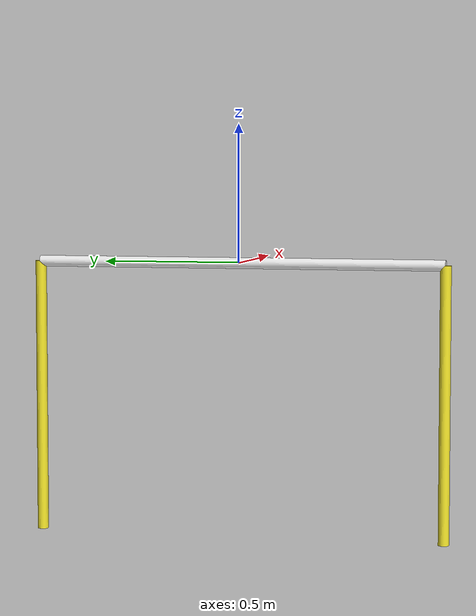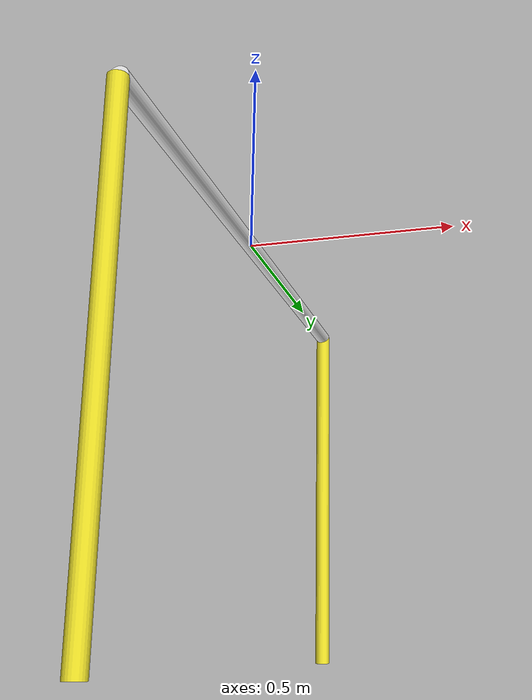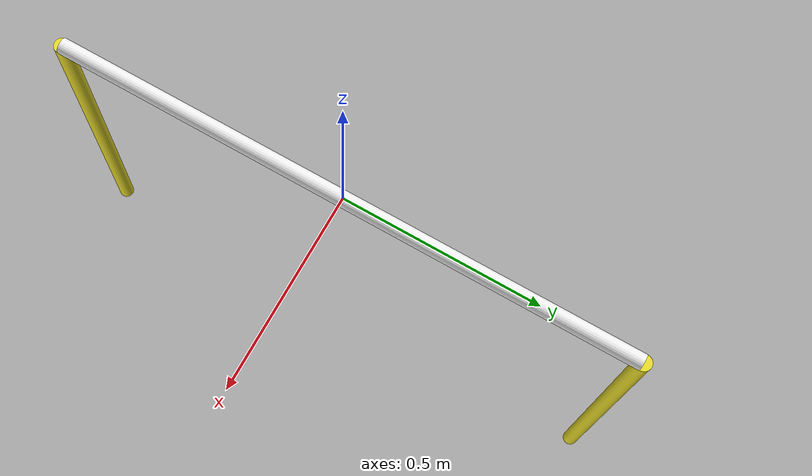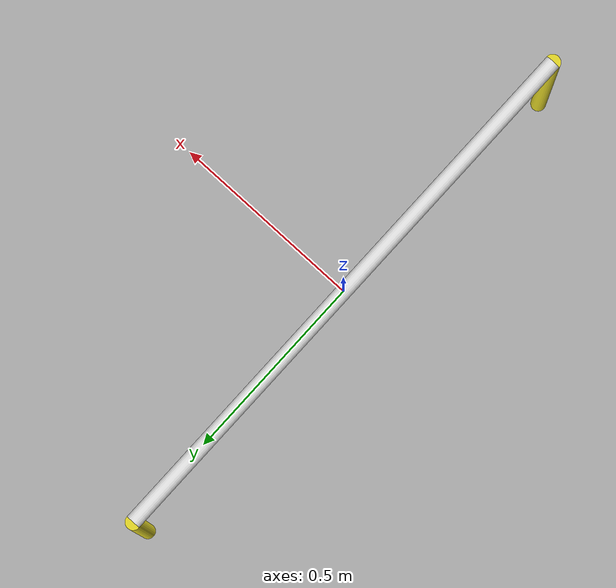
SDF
<?xml version="1.0" ?>

<sdf version="1.5">
  <model name="qualification_gate">
    <static>true</static>
    <link name="link">

      <collision name="left">
        <pose>0 0.75 -0.5 0 0 0</pose>
        <geometry>
          <cylinder>
            <radius>0.02</radius>
            <length>1</length>
          </cylinder>
        </geometry>
      </collision>

      <collision name="right">
        <pose>0 -0.75 -0.5 0 0 0</pose>
        <geometry>
          <cylinder>
            <radius>0.02</radius>
            <length>1</length>
          </cylinder>
        </geometry>
      </collision>

      <collision name="top">
        <pose>0 0 0 1.57 0 0</pose>
        <geometry>
          <cylinder>
            <radius>0.02</radius>
            <length>1.5</length>
          </cylinder>
        </geometry>
      </collision>

      <visual name="left">
        <cast_shadows>false</cast_shadows>
        <pose>0 0.75 -0.5 0 0 0</pose>
        <geometry>
          <cylinder>
            <radius>0.02</radius>
            <length>1</length>
          </cylinder>
        </geometry>
        <material>
          <script>
            <uri>file://media/materials/scripts/colors.material</uri>
            <name>SAUVC/Yellow</name>
          </script>
        </material>
      </visual>

      <visual name="right">
        <cast_shadows>false</cast_shadows>
        <pose>0 -0.75 -0.5 0 0 0</pose>
        <geometry>
          <cylinder>
            <radius>0.02</radius>
            <length>1</length>
          </cylinder>
        </geometry>
        <material>
          <script>
            <uri>file://media/materials/scripts/colors.material</uri>
            <name>SAUVC/Yellow</name>
          </script>
        </material>
      </visual>

      <visual name="top">
        <cast_shadows>false</cast_shadows>
        <pose>0 0 0 1.57 0 0</pose>
        <geometry>
          <cylinder>
            <radius>0.02</radius>
            <length>1.5</length>
          </cylinder>
        </geometry>
        <material>
          <script>
            <uri>file://media/materials/scripts/colors.material</uri>
            <name>SAUVC/White</name>
          </script>
        </material>
      </visual>

    </link>
  </model>
</sdf>
